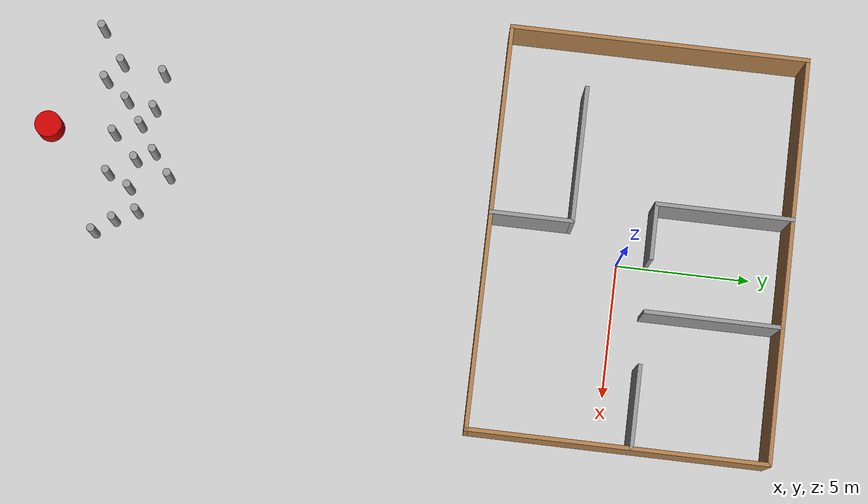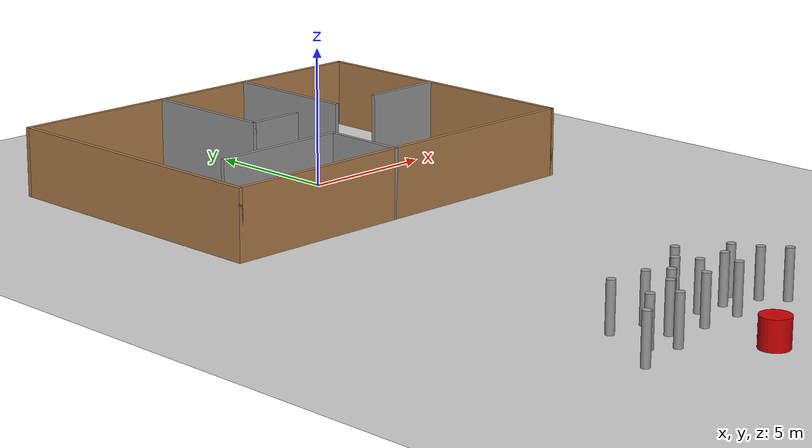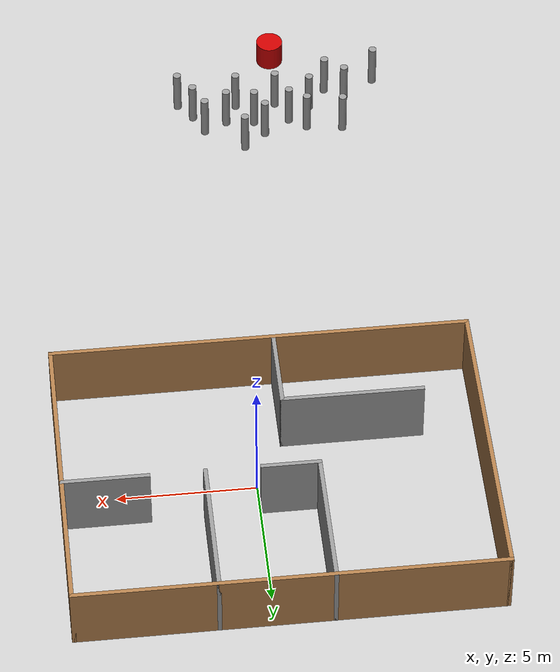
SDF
<sdf version="1.6">
 <world name="default">
  <light name="sun" type="directional">
   <pose>0 0 10 0 -0 0</pose>
   <diffuse>0.8 0.8 0.8 1</diffuse>
   <specular>0.2 0.2 0.2 1</specular>
   <attenuation>
    <range>1000</range>
    <constant>0.9</constant>
    <linear>0.01</linear>
    <quadratic>0.001</quadratic>
   </attenuation>
   <direction>-0.5 0.1 -0.9</direction>
  </light>
  <model name="ground_plane">
   <static>1</static>
   <link name="link">
    <collision name="collision">
     <geometry><plane><normal>0 0 1</normal><size>100 100</size></plane></geometry>
     <surface><friction><ode><mu>100</mu><mu2>50</mu2></ode></friction></surface>
    </collision>
    <visual name="visual">
     <cast_shadows>0</cast_shadows>
     <geometry><plane><normal>0 0 1</normal><size>100 100</size></plane></geometry>
     <material>
      <script><uri>file://media/materials/scripts/gazebo.material</uri><name>Gazebo/Grey</name></script>
     </material>
    </visual>
   </link>
  </model>
  <gravity>0 0 -9.8</gravity>
  <magnetic_field>6e-06 2.3e-05 -4.2e-05</magnetic_field>
  <atmosphere type="adiabatic"/>
  <physics name="default_physics" default="0" type="ode">
   <max_step_size>0.001</max_step_size>
   <real_time_factor>1</real_time_factor>
   <real_time_update_rate>1000</real_time_update_rate>
  </physics>
  <scene><ambient>0.4 0.4 0.4 1</ambient><background>0.7 0.7 0.7 1</background><shadows>1</shadows></scene>
  <spherical_coordinates>
   <surface_model>EARTH_WGS84</surface_model>
   <latitude_deg>0</latitude_deg>
   <longitude_deg>0</longitude_deg>
   <elevation>0</elevation>
   <heading_deg>0</heading_deg>
  </spherical_coordinates>
  <model name="test">
   <pose>-0.59103 0.583322 0 0 -0 0</pose>
   <link name="Wall_10">
    <collision name="Wall_10_Collision">
     <geometry><box><size>11.15 0.15 2.5</size></box></geometry>
     <pose>0 0 1.25 0 -0 0</pose>
    </collision>
    <visual name="Wall_10_Visual">
     <pose>0 0 1.25 0 -0 0</pose>
     <geometry><box><size>11.15 0.15 2.5</size></box></geometry>
     <material>
      <script><uri>file://media/materials/scripts/gazebo.material</uri><name>Gazebo/Wood</name></script>
      <ambient>0.760784 0.662745 0.627451 1</ambient>
     </material>
     <meta><layer>0</layer></meta>
    </visual>
    <pose>7.5 0 0 0 -0 -1.5708</pose>
   </link>
   <link name="Wall_12">
    <collision name="Wall_12_Collision">
     <geometry><box><size>5.15 0.15 2.5</size></box></geometry>
     <pose>0 0 1.25 0 -0 0</pose>
    </collision>
    <visual name="Wall_12_Visual">
     <pose>0 0 1.25 0 -0 0</pose>
     <geometry><box><size>5.15 0.15 2.5</size></box></geometry>
     <material>
      <script><uri>file://media/materials/scripts/gazebo.material</uri><name>Gazebo/Grey</name></script>
      <ambient>1 1 1 1</ambient>
     </material>
     <meta><layer>0</layer></meta>
    </visual>
    <pose>-3 -2.5 0 0 -0 0</pose>
   </link>
   <link name="Wall_14">
    <collision name="Wall_14_Collision">
     <geometry><box><size>3.15 0.15 2.5</size></box></geometry>
     <pose>0 0 1.25 0 -0 0</pose>
    </collision>
    <visual name="Wall_14_Visual">
     <pose>0 0 1.25 0 -0 0</pose>
     <geometry><box><size>3.15 0.15 2.5</size></box></geometry>
     <material>
      <script><uri>file://media/materials/scripts/gazebo.material</uri><name>Gazebo/Grey</name></script>
      <ambient>1 1 1 1</ambient>
     </material>
     <meta><layer>0</layer></meta>
    </visual>
    <pose>-0.5 -4 0 0 -0 1.5708</pose>
   </link>
   <link name="Wall_16">
    <collision name="Wall_16_Collision">
     <geometry><box><size>2.15 0.15 2.5</size></box></geometry>
     <pose>0 0 1.25 0 -0 0</pose>
    </collision>
    <visual name="Wall_16_Visual">
     <pose>0 0 1.25 0 -0 0</pose>
     <geometry><box><size>2.15 0.15 2.5</size></box></geometry>
     <material>
      <script><uri>file://media/materials/scripts/gazebo.material</uri><name>Gazebo/Grey</name></script>
      <ambient>1 1 1 1</ambient>
     </material>
     <meta><layer>0</layer></meta>
    </visual>
    <pose>-0.5 0.5 0 0 -0 0</pose>
   </link>
   <link name="Wall_18">
    <collision name="Wall_18_Collision">
     <geometry><box><size>3.15 0.15 2.5</size></box></geometry>
     <pose>0 0 1.25 0 -0 0</pose>
    </collision>
    <visual name="Wall_18_Visual">
     <pose>0 0 1.25 0 -0 0</pose>
     <geometry><box><size>3.15 0.15 2.5</size></box></geometry>
     <material>
      <script><uri>file://media/materials/scripts/gazebo.material</uri><name>Gazebo/Grey</name></script>
      <ambient>1 1 1 1</ambient>
     </material>
     <meta><layer>0</layer></meta>
    </visual>
    <pose>6 0.5 0 0 -0 0</pose>
   </link>
   <link name="Wall_20">
    <collision name="Wall_20_Collision">
     <geometry><box><size>5.15 0.15 2.5</size></box></geometry>
     <pose>0 0 1.25 0 -0 0</pose>
    </collision>
    <visual name="Wall_20_Visual">
     <pose>0 0 1.25 0 -0 0</pose>
     <geometry><box><size>5.15 0.15 2.5</size></box></geometry>
     <material>
      <script><uri>file://media/materials/scripts/gazebo.material</uri><name>Gazebo/Grey</name></script>
      <ambient>1 1 1 1</ambient>
     </material>
     <meta><layer>0</layer></meta>
    </visual>
    <pose>-1.5 3 0 0 -0 -1.5708</pose>
   </link>
   <link name="Wall_22">
    <collision name="Wall_22_Collision">
     <geometry><box><size>5.15 0.15 2.5</size></box></geometry>
     <pose>0 0 1.25 0 -0 0</pose>
    </collision>
    <visual name="Wall_22_Visual">
     <pose>0 0 1.25 0 -0 0</pose>
     <geometry><box><size>5.15 0.15 2.5</size></box></geometry>
     <material>
      <script><uri>file://media/materials/scripts/gazebo.material</uri><name>Gazebo/Grey</name></script>
      <ambient>1 1 1 1</ambient>
     </material>
     <meta><layer>0</layer></meta>
    </visual>
    <pose>2.5 3 0 0 -0 -1.5708</pose>
   </link>
   <link name="Wall_4">
    <collision name="Wall_4_Collision">
     <geometry><box><size>15.15 0.15 2.5</size></box></geometry>
     <pose>0 0 1.25 0 -0 0</pose>
    </collision>
    <visual name="Wall_4_Visual">
     <pose>0 0 1.25 0 -0 0</pose>
     <geometry><box><size>15.15 0.15 2.5</size></box></geometry>
     <material>
      <script><uri>file://media/materials/scripts/gazebo.material</uri><name>Gazebo/Wood</name></script>
      <ambient>0.760784 0.662745 0.627451 1</ambient>
     </material>
     <meta><layer>0</layer></meta>
    </visual>
    <pose>0 -5.5 0 0 -0 0</pose>
   </link>
   <link name="Wall_6">
    <collision name="Wall_6_Collision">
     <geometry><box><size>15.15 0.15 2.5</size></box></geometry>
     <pose>0 0 1.25 0 -0 0</pose>
    </collision>
    <visual name="Wall_6_Visual">
     <pose>0 0 1.25 0 -0 0</pose>
     <geometry><box><size>15.15 0.15 2.5</size></box></geometry>
     <material>
      <script><uri>file://media/materials/scripts/gazebo.material</uri><name>Gazebo/Wood</name></script>
      <ambient>0.760784 0.662745 0.627451 1</ambient>
     </material>
     <meta><layer>0</layer></meta>
    </visual>
    <pose>0 5.5 0 0 -0 0</pose>
   </link>
   <link name="Wall_8">
    <collision name="Wall_8_Collision">
     <geometry><box><size>11.15 0.15 2.5</size></box></geometry>
     <pose>0 0 1.25 0 -0 0</pose>
    </collision>
    <visual name="Wall_8_Visual">
     <pose>0 0 1.25 0 -0 0</pose>
     <geometry><box><size>11.15 0.15 2.5</size></box></geometry>
     <material>
      <script><uri>file://media/materials/scripts/gazebo.material</uri><name>Gazebo/Wood</name></script>
      <ambient>0.760784 0.662745 0.627451 1</ambient>
     </material>
     <meta><layer>0</layer></meta>
    </visual>
    <pose>-7.5 0 0 0 -0 -1.5708</pose>
   </link>
   <static>1</static>
  </model>
  <model name="focus_point">
   <link name="link">
    <inertial>
     <mass>1</mass>
     <inertia><ixx>0.145833</ixx><ixy>0</ixy><ixz>0</ixz><iyy>0.145833</iyy><iyz>0</iyz><izz>0.125</izz></inertia>
    </inertial>
    <visual name="visual">
     <geometry><cylinder><radius>0.5</radius><length>1</length></cylinder></geometry>
     <material>
      <script><name>Gazebo/Grey</name><uri>file://media/materials/scripts/gazebo.material</uri></script>
      <shader type="pixel"><normal_map>__default__</normal_map></shader>
      <ambient>0.8 0 0 0</ambient>
      <diffuse>0.7 0.7 0.7 1</diffuse>
      <specular>0.01 0.01 0.01 1</specular>
      <emissive>0 0 0 1</emissive>
     </material>
    </visual>
    <collision name="collision">
     <geometry><cylinder><radius>0.5</radius><length>1</length></cylinder></geometry>
     <surface>
      <friction>
       <ode><mu>1</mu><mu2>1</mu2><fdir1>0 0 0</fdir1><slip1>0</slip1><slip2>0</slip2></ode>
       <torsional>
        <coefficient>1</coefficient>
        <patch_radius>0</patch_radius>
        <surface_radius>0</surface_radius>
        <use_patch_radius>1</use_patch_radius>
        <ode><slip>0</slip></ode>
       </torsional>
      </friction>
      <bounce><restitution_coefficient>0</restitution_coefficient><threshold>1e+06</threshold></bounce>
      <contact>
       <collide_without_contact>0</collide_without_contact>
       <collide_without_contact_bitmask>1</collide_without_contact_bitmask>
       <collide_bitmask>1</collide_bitmask>
       <ode>
        <soft_cfm>0</soft_cfm>
        <soft_erp>0.2</soft_erp>
        <kp>1e+13</kp>
        <kd>1</kd>
        <max_vel>0.01</max_vel>
        <min_depth>0</min_depth>
       </ode>
       <bullet>
        <split_impulse>1</split_impulse>
        <split_impulse_penetration_threshold>-0.01</split_impulse_penetration_threshold>
        <soft_cfm>0</soft_cfm>
        <soft_erp>0.2</soft_erp>
        <kp>1e+13</kp>
        <kd>1</kd>
       </bullet>
      </contact>
     </surface>
    </collision>
   </link>
   <static>0</static>
   <pose>-2.7076 -21.7567 0.5 0 -0 0</pose>
  </model>
  <model name="person_cylinder">
   <link name="link">
    <inertial>
     <mass>1</mass>
     <inertia><ixx>0.145833</ixx><ixy>0</ixy><ixz>0</ixz><iyy>0.145833</iyy><iyz>0</iyz><izz>0.125</izz></inertia>
    </inertial>
    <pose>0 0 0.86 0 -0 0</pose>
    <visual name="visual">
     <geometry><cylinder><radius>0.15</radius><length>1.7</length></cylinder></geometry>
     <material>
      <script><name>Gazebo/Grey</name><uri>file://media/materials/scripts/gazebo.material</uri></script>
      <shader type="pixel"><normal_map>__default__</normal_map></shader>
      <ambient>0.3 0.3 0.3 1</ambient>
      <diffuse>0.7 0.7 0.7 1</diffuse>
      <specular>0.01 0.01 0.01 1</specular>
      <emissive>0 0 0 1</emissive>
     </material>
    </visual>
    <collision name="collision">
     <geometry><cylinder><radius>0.15</radius><length>1.7</length></cylinder></geometry>
     <surface>
      <friction>
       <ode><mu>1</mu><mu2>1</mu2><fdir1>0 0 0</fdir1><slip1>0</slip1><slip2>0</slip2></ode>
       <torsional>
        <coefficient>1</coefficient>
        <patch_radius>0</patch_radius>
        <surface_radius>0</surface_radius>
        <use_patch_radius>1</use_patch_radius>
        <ode><slip>0</slip></ode>
       </torsional>
      </friction>
      <bounce><restitution_coefficient>0</restitution_coefficient><threshold>1e+06</threshold></bounce>
      <contact>
       <collide_without_contact>0</collide_without_contact>
       <collide_without_contact_bitmask>1</collide_without_contact_bitmask>
       <collide_bitmask>1</collide_bitmask>
       <ode>
        <soft_cfm>0</soft_cfm>
        <soft_erp>0.2</soft_erp>
        <kp>1e+13</kp>
        <kd>1</kd>
        <max_vel>0.01</max_vel>
        <min_depth>0</min_depth>
       </ode>
       <bullet>
        <split_impulse>1</split_impulse>
        <split_impulse_penetration_threshold>-0.01</split_impulse_penetration_threshold>
        <soft_cfm>0</soft_cfm>
        <soft_erp>0.2</soft_erp>
        <kp>1e+13</kp>
        <kd>1</kd>
       </bullet>
      </contact>
     </surface>
    </collision>
   </link>
   <static>0</static>
   <pose>-3.96311 -18.9393 -0.010004 0 0 -5e-06</pose>
  </model>
  <model name="person_cylinder_0">
   <link name="link">
    <inertial>
     <mass>1</mass>
     <inertia><ixx>0.145833</ixx><ixy>0</ixy><ixz>0</ixz><iyy>0.145833</iyy><iyz>0</iyz><izz>0.125</izz></inertia>
    </inertial>
    <pose>0 0 0.86 0 -0 0</pose>
    <visual name="visual">
     <geometry><cylinder><radius>0.15</radius><length>1.7</length></cylinder></geometry>
     <material>
      <script><name>Gazebo/Grey</name><uri>file://media/materials/scripts/gazebo.material</uri></script>
      <shader type="pixel"><normal_map>__default__</normal_map></shader>
      <ambient>0.3 0.3 0.3 1</ambient>
      <diffuse>0.7 0.7 0.7 1</diffuse>
      <specular>0.01 0.01 0.01 1</specular>
      <emissive>0 0 0 1</emissive>
     </material>
    </visual>
    <collision name="collision">
     <geometry><cylinder><radius>0.15</radius><length>1.7</length></cylinder></geometry>
     <surface>
      <friction>
       <ode><mu>1</mu><mu2>1</mu2><fdir1>0 0 0</fdir1><slip1>0</slip1><slip2>0</slip2></ode>
       <torsional>
        <coefficient>1</coefficient>
        <patch_radius>0</patch_radius>
        <surface_radius>0</surface_radius>
        <use_patch_radius>1</use_patch_radius>
        <ode><slip>0</slip></ode>
       </torsional>
      </friction>
      <bounce><restitution_coefficient>0</restitution_coefficient><threshold>1e+06</threshold></bounce>
      <contact>
       <collide_without_contact>0</collide_without_contact>
       <collide_without_contact_bitmask>1</collide_without_contact_bitmask>
       <collide_bitmask>1</collide_bitmask>
       <ode>
        <soft_cfm>0</soft_cfm>
        <soft_erp>0.2</soft_erp>
        <kp>1e+13</kp>
        <kd>1</kd>
        <max_vel>0.01</max_vel>
        <min_depth>0</min_depth>
       </ode>
       <bullet>
        <split_impulse>1</split_impulse>
        <split_impulse_penetration_threshold>-0.01</split_impulse_penetration_threshold>
        <soft_cfm>0</soft_cfm>
        <soft_erp>0.2</soft_erp>
        <kp>1e+13</kp>
        <kd>1</kd>
       </bullet>
      </contact>
     </surface>
    </collision>
   </link>
   <static>0</static>
   <pose>-2.66432 -19.2473 -0.010004 0 0 -5e-06</pose>
  </model>
  <model name="person_cylinder_1">
   <link name="link">
    <inertial>
     <mass>1</mass>
     <inertia><ixx>0.145833</ixx><ixy>0</ixy><ixz>0</ixz><iyy>0.145833</iyy><iyz>0</iyz><izz>0.125</izz></inertia>
    </inertial>
    <pose>0 0 0.86 0 -0 0</pose>
    <visual name="visual">
     <geometry><cylinder><radius>0.15</radius><length>1.7</length></cylinder></geometry>
     <material>
      <script><name>Gazebo/Grey</name><uri>file://media/materials/scripts/gazebo.material</uri></script>
      <shader type="pixel"><normal_map>__default__</normal_map></shader>
      <ambient>0.3 0.3 0.3 1</ambient>
      <diffuse>0.7 0.7 0.7 1</diffuse>
      <specular>0.01 0.01 0.01 1</specular>
      <emissive>0 0 0 1</emissive>
     </material>
    </visual>
    <collision name="collision">
     <geometry><cylinder><radius>0.15</radius><length>1.7</length></cylinder></geometry>
     <surface>
      <friction>
       <ode><mu>1</mu><mu2>1</mu2><fdir1>0 0 0</fdir1><slip1>0</slip1><slip2>0</slip2></ode>
       <torsional>
        <coefficient>1</coefficient>
        <patch_radius>0</patch_radius>
        <surface_radius>0</surface_radius>
        <use_patch_radius>1</use_patch_radius>
        <ode><slip>0</slip></ode>
       </torsional>
      </friction>
      <bounce><restitution_coefficient>0</restitution_coefficient><threshold>1e+06</threshold></bounce>
      <contact>
       <collide_without_contact>0</collide_without_contact>
       <collide_without_contact_bitmask>1</collide_without_contact_bitmask>
       <collide_bitmask>1</collide_bitmask>
       <ode>
        <soft_cfm>0</soft_cfm>
        <soft_erp>0.2</soft_erp>
        <kp>1e+13</kp>
        <kd>1</kd>
        <max_vel>0.01</max_vel>
        <min_depth>0</min_depth>
       </ode>
       <bullet>
        <split_impulse>1</split_impulse>
        <split_impulse_penetration_threshold>-0.01</split_impulse_penetration_threshold>
        <soft_cfm>0</soft_cfm>
        <soft_erp>0.2</soft_erp>
        <kp>1e+13</kp>
        <kd>1</kd>
       </bullet>
      </contact>
     </surface>
    </collision>
   </link>
   <static>0</static>
   <pose>-1.13431 -19.2848 -0.010005 0 0 -8e-06</pose>
  </model>
  <model name="person_cylinder_2">
   <link name="link">
    <inertial>
     <mass>1</mass>
     <inertia><ixx>0.145833</ixx><ixy>0</ixy><ixz>0</ixz><iyy>0.145833</iyy><iyz>0</iyz><izz>0.125</izz></inertia>
    </inertial>
    <pose>0 0 0.86 0 -0 0</pose>
    <visual name="visual">
     <geometry><cylinder><radius>0.15</radius><length>1.7</length></cylinder></geometry>
     <material>
      <script><name>Gazebo/Grey</name><uri>file://media/materials/scripts/gazebo.material</uri></script>
      <shader type="pixel"><normal_map>__default__</normal_map></shader>
      <ambient>0.3 0.3 0.3 1</ambient>
      <diffuse>0.7 0.7 0.7 1</diffuse>
      <specular>0.01 0.01 0.01 1</specular>
      <emissive>0 0 0 1</emissive>
     </material>
    </visual>
    <collision name="collision">
     <geometry><cylinder><radius>0.15</radius><length>1.7</length></cylinder></geometry>
     <surface>
      <friction>
       <ode><mu>1</mu><mu2>1</mu2><fdir1>0 0 0</fdir1><slip1>0</slip1><slip2>0</slip2></ode>
       <torsional>
        <coefficient>1</coefficient>
        <patch_radius>0</patch_radius>
        <surface_radius>0</surface_radius>
        <use_patch_radius>1</use_patch_radius>
        <ode><slip>0</slip></ode>
       </torsional>
      </friction>
      <bounce><restitution_coefficient>0</restitution_coefficient><threshold>1e+06</threshold></bounce>
      <contact>
       <collide_without_contact>0</collide_without_contact>
       <collide_without_contact_bitmask>1</collide_without_contact_bitmask>
       <collide_bitmask>1</collide_bitmask>
       <ode>
        <soft_cfm>0</soft_cfm>
        <soft_erp>0.2</soft_erp>
        <kp>1e+13</kp>
        <kd>1</kd>
        <max_vel>0.01</max_vel>
        <min_depth>0</min_depth>
       </ode>
       <bullet>
        <split_impulse>1</split_impulse>
        <split_impulse_penetration_threshold>-0.01</split_impulse_penetration_threshold>
        <soft_cfm>0</soft_cfm>
        <soft_erp>0.2</soft_erp>
        <kp>1e+13</kp>
        <kd>1</kd>
       </bullet>
      </contact>
     </surface>
    </collision>
   </link>
   <static>0</static>
   <pose>0.572086 -18.8191 -0.010004 0 0 -6e-06</pose>
  </model>
  <model name="person_cylinder_3">
   <link name="link">
    <inertial>
     <mass>1</mass>
     <inertia><ixx>0.145833</ixx><ixy>0</ixy><ixz>0</ixz><iyy>0.145833</iyy><iyz>0</iyz><izz>0.125</izz></inertia>
    </inertial>
    <pose>0 0 0.86 0 -0 0</pose>
    <visual name="visual">
     <geometry><cylinder><radius>0.15</radius><length>1.7</length></cylinder></geometry>
     <material>
      <script><name>Gazebo/Grey</name><uri>file://media/materials/scripts/gazebo.material</uri></script>
      <shader type="pixel"><normal_map>__default__</normal_map></shader>
      <ambient>0.3 0.3 0.3 1</ambient>
      <diffuse>0.7 0.7 0.7 1</diffuse>
      <specular>0.01 0.01 0.01 1</specular>
      <emissive>0 0 0 1</emissive>
     </material>
    </visual>
    <collision name="collision">
     <geometry><cylinder><radius>0.15</radius><length>1.7</length></cylinder></geometry>
     <surface>
      <friction>
       <ode><mu>1</mu><mu2>1</mu2><fdir1>0 0 0</fdir1><slip1>0</slip1><slip2>0</slip2></ode>
       <torsional>
        <coefficient>1</coefficient>
        <patch_radius>0</patch_radius>
        <surface_radius>0</surface_radius>
        <use_patch_radius>1</use_patch_radius>
        <ode><slip>0</slip></ode>
       </torsional>
      </friction>
      <bounce><restitution_coefficient>0</restitution_coefficient><threshold>1e+06</threshold></bounce>
      <contact>
       <collide_without_contact>0</collide_without_contact>
       <collide_without_contact_bitmask>1</collide_without_contact_bitmask>
       <collide_bitmask>1</collide_bitmask>
       <ode>
        <soft_cfm>0</soft_cfm>
        <soft_erp>0.2</soft_erp>
        <kp>1e+13</kp>
        <kd>1</kd>
        <max_vel>0.01</max_vel>
        <min_depth>0</min_depth>
       </ode>
       <bullet>
        <split_impulse>1</split_impulse>
        <split_impulse_penetration_threshold>-0.01</split_impulse_penetration_threshold>
        <soft_cfm>0</soft_cfm>
        <soft_erp>0.2</soft_erp>
        <kp>1e+13</kp>
        <kd>1</kd>
       </bullet>
      </contact>
     </surface>
    </collision>
   </link>
   <static>0</static>
   <pose>1.10652 -19.5145 -0.010005 0 -0 -9e-06</pose>
  </model>
  <model name="person_cylinder_4">
   <link name="link">
    <inertial>
     <mass>1</mass>
     <inertia><ixx>0.145833</ixx><ixy>0</ixy><ixz>0</ixz><iyy>0.145833</iyy><iyz>0</iyz><izz>0.125</izz></inertia>
    </inertial>
    <pose>0 0 0.86 0 -0 0</pose>
    <visual name="visual">
     <geometry><cylinder><radius>0.15</radius><length>1.7</length></cylinder></geometry>
     <material>
      <script><name>Gazebo/Grey</name><uri>file://media/materials/scripts/gazebo.material</uri></script>
      <shader type="pixel"><normal_map>__default__</normal_map></shader>
      <ambient>0.3 0.3 0.3 1</ambient>
      <diffuse>0.7 0.7 0.7 1</diffuse>
      <specular>0.01 0.01 0.01 1</specular>
      <emissive>0 0 0 1</emissive>
     </material>
    </visual>
    <collision name="collision">
     <geometry><cylinder><radius>0.15</radius><length>1.7</length></cylinder></geometry>
     <surface>
      <friction>
       <ode><mu>1</mu><mu2>1</mu2><fdir1>0 0 0</fdir1><slip1>0</slip1><slip2>0</slip2></ode>
       <torsional>
        <coefficient>1</coefficient>
        <patch_radius>0</patch_radius>
        <surface_radius>0</surface_radius>
        <use_patch_radius>1</use_patch_radius>
        <ode><slip>0</slip></ode>
       </torsional>
      </friction>
      <bounce><restitution_coefficient>0</restitution_coefficient><threshold>1e+06</threshold></bounce>
      <contact>
       <collide_without_contact>0</collide_without_contact>
       <collide_without_contact_bitmask>1</collide_without_contact_bitmask>
       <collide_bitmask>1</collide_bitmask>
       <ode>
        <soft_cfm>0</soft_cfm>
        <soft_erp>0.2</soft_erp>
        <kp>1e+13</kp>
        <kd>1</kd>
        <max_vel>0.01</max_vel>
        <min_depth>0</min_depth>
       </ode>
       <bullet>
        <split_impulse>1</split_impulse>
        <split_impulse_penetration_threshold>-0.01</split_impulse_penetration_threshold>
        <soft_cfm>0</soft_cfm>
        <soft_erp>0.2</soft_erp>
        <kp>1e+13</kp>
        <kd>1</kd>
       </bullet>
      </contact>
     </surface>
    </collision>
   </link>
   <static>0</static>
   <pose>-0.685376 -18.4193 -0.010004 0 0 -8e-06</pose>
  </model>
  <model name="person_cylinder_5">
   <link name="link">
    <inertial>
     <mass>1</mass>
     <inertia><ixx>0.145833</ixx><ixy>0</ixy><ixz>0</ixz><iyy>0.145833</iyy><iyz>0</iyz><izz>0.125</izz></inertia>
    </inertial>
    <pose>0 0 0.86 0 -0 0</pose>
    <visual name="visual">
     <geometry><cylinder><radius>0.15</radius><length>1.7</length></cylinder></geometry>
     <material>
      <script><name>Gazebo/Grey</name><uri>file://media/materials/scripts/gazebo.material</uri></script>
      <shader type="pixel"><normal_map>__default__</normal_map></shader>
      <ambient>0.3 0.3 0.3 1</ambient>
      <diffuse>0.7 0.7 0.7 1</diffuse>
      <specular>0.01 0.01 0.01 1</specular>
      <emissive>0 0 0 1</emissive>
     </material>
    </visual>
    <collision name="collision">
     <geometry><cylinder><radius>0.15</radius><length>1.7</length></cylinder></geometry>
     <surface>
      <friction>
       <ode><mu>1</mu><mu2>1</mu2><fdir1>0 0 0</fdir1><slip1>0</slip1><slip2>0</slip2></ode>
       <torsional>
        <coefficient>1</coefficient>
        <patch_radius>0</patch_radius>
        <surface_radius>0</surface_radius>
        <use_patch_radius>1</use_patch_radius>
        <ode><slip>0</slip></ode>
       </torsional>
      </friction>
      <bounce><restitution_coefficient>0</restitution_coefficient><threshold>1e+06</threshold></bounce>
      <contact>
       <collide_without_contact>0</collide_without_contact>
       <collide_without_contact_bitmask>1</collide_without_contact_bitmask>
       <collide_bitmask>1</collide_bitmask>
       <ode>
        <soft_cfm>0</soft_cfm>
        <soft_erp>0.2</soft_erp>
        <kp>1e+13</kp>
        <kd>1</kd>
        <max_vel>0.01</max_vel>
        <min_depth>0</min_depth>
       </ode>
       <bullet>
        <split_impulse>1</split_impulse>
        <split_impulse_penetration_threshold>-0.01</split_impulse_penetration_threshold>
        <soft_cfm>0</soft_cfm>
        <soft_erp>0.2</soft_erp>
        <kp>1e+13</kp>
        <kd>1</kd>
       </bullet>
      </contact>
     </surface>
    </collision>
   </link>
   <static>0</static>
   <pose>-2.12036 -17.6685 -0.010005 -0 -0 -5e-06</pose>
  </model>
  <model name="person_cylinder_6">
   <link name="link">
    <inertial>
     <mass>1</mass>
     <inertia><ixx>0.145833</ixx><ixy>0</ixy><ixz>0</ixz><iyy>0.145833</iyy><iyz>0</iyz><izz>0.125</izz></inertia>
    </inertial>
    <pose>0 0 0.86 0 -0 0</pose>
    <visual name="visual">
     <geometry><cylinder><radius>0.15</radius><length>1.7</length></cylinder></geometry>
     <material>
      <script><name>Gazebo/Grey</name><uri>file://media/materials/scripts/gazebo.material</uri></script>
      <shader type="pixel"><normal_map>__default__</normal_map></shader>
      <ambient>0.3 0.3 0.3 1</ambient>
      <diffuse>0.7 0.7 0.7 1</diffuse>
      <specular>0.01 0.01 0.01 1</specular>
      <emissive>0 0 0 1</emissive>
     </material>
    </visual>
    <collision name="collision">
     <geometry><cylinder><radius>0.15</radius><length>1.7</length></cylinder></geometry>
     <surface>
      <friction>
       <ode><mu>1</mu><mu2>1</mu2><fdir1>0 0 0</fdir1><slip1>0</slip1><slip2>0</slip2></ode>
       <torsional>
        <coefficient>1</coefficient>
        <patch_radius>0</patch_radius>
        <surface_radius>0</surface_radius>
        <use_patch_radius>1</use_patch_radius>
        <ode><slip>0</slip></ode>
       </torsional>
      </friction>
      <bounce><restitution_coefficient>0</restitution_coefficient><threshold>1e+06</threshold></bounce>
      <contact>
       <collide_without_contact>0</collide_without_contact>
       <collide_without_contact_bitmask>1</collide_without_contact_bitmask>
       <collide_bitmask>1</collide_bitmask>
       <ode>
        <soft_cfm>0</soft_cfm>
        <soft_erp>0.2</soft_erp>
        <kp>1e+13</kp>
        <kd>1</kd>
        <max_vel>0.01</max_vel>
        <min_depth>0</min_depth>
       </ode>
       <bullet>
        <split_impulse>1</split_impulse>
        <split_impulse_penetration_threshold>-0.01</split_impulse_penetration_threshold>
        <soft_cfm>0</soft_cfm>
        <soft_erp>0.2</soft_erp>
        <kp>1e+13</kp>
        <kd>1</kd>
       </bullet>
      </contact>
     </surface>
    </collision>
   </link>
   <static>0</static>
   <pose>-3.76584 -17.868 -0.010004 0 0 -5e-06</pose>
  </model>
  <model name="person_cylinder_7">
   <link name="link">
    <inertial>
     <mass>1</mass>
     <inertia><ixx>0.145833</ixx><ixy>0</ixy><ixz>0</ixz><iyy>0.145833</iyy><iyz>0</iyz><izz>0.125</izz></inertia>
    </inertial>
    <pose>0 0 0.86 0 -0 0</pose>
    <visual name="visual">
     <geometry><cylinder><radius>0.15</radius><length>1.7</length></cylinder></geometry>
     <material>
      <script><name>Gazebo/Grey</name><uri>file://media/materials/scripts/gazebo.material</uri></script>
      <shader type="pixel"><normal_map>__default__</normal_map></shader>
      <ambient>0.3 0.3 0.3 1</ambient>
      <diffuse>0.7 0.7 0.7 1</diffuse>
      <specular>0.01 0.01 0.01 1</specular>
      <emissive>0 0 0 1</emissive>
     </material>
    </visual>
    <collision name="collision">
     <geometry><cylinder><radius>0.15</radius><length>1.7</length></cylinder></geometry>
     <surface>
      <friction>
       <ode><mu>1</mu><mu2>1</mu2><fdir1>0 0 0</fdir1><slip1>0</slip1><slip2>0</slip2></ode>
       <torsional>
        <coefficient>1</coefficient>
        <patch_radius>0</patch_radius>
        <surface_radius>0</surface_radius>
        <use_patch_radius>1</use_patch_radius>
        <ode><slip>0</slip></ode>
       </torsional>
      </friction>
      <bounce><restitution_coefficient>0</restitution_coefficient><threshold>1e+06</threshold></bounce>
      <contact>
       <collide_without_contact>0</collide_without_contact>
       <collide_without_contact_bitmask>1</collide_without_contact_bitmask>
       <collide_bitmask>1</collide_bitmask>
       <ode>
        <soft_cfm>0</soft_cfm>
        <soft_erp>0.2</soft_erp>
        <kp>1e+13</kp>
        <kd>1</kd>
        <max_vel>0.01</max_vel>
        <min_depth>0</min_depth>
       </ode>
       <bullet>
        <split_impulse>1</split_impulse>
        <split_impulse_penetration_threshold>-0.01</split_impulse_penetration_threshold>
        <soft_cfm>0</soft_cfm>
        <soft_erp>0.2</soft_erp>
        <kp>1e+13</kp>
        <kd>1</kd>
       </bullet>
      </contact>
     </surface>
    </collision>
   </link>
   <static>0</static>
   <pose>-4.65378 -19.8264 -0.010005 0 -0 -9e-06</pose>
  </model>
  <model name="person_cylinder_8">
   <link name="link">
    <inertial>
     <mass>1</mass>
     <inertia><ixx>0.145833</ixx><ixy>0</ixy><ixz>0</ixz><iyy>0.145833</iyy><iyz>0</iyz><izz>0.125</izz></inertia>
    </inertial>
    <pose>0 0 0.86 0 -0 0</pose>
    <visual name="visual">
     <geometry><cylinder><radius>0.15</radius><length>1.7</length></cylinder></geometry>
     <material>
      <script><name>Gazebo/Grey</name><uri>file://media/materials/scripts/gazebo.material</uri></script>
      <shader type="pixel"><normal_map>__default__</normal_map></shader>
      <ambient>0.3 0.3 0.3 1</ambient>
      <diffuse>0.7 0.7 0.7 1</diffuse>
      <specular>0.01 0.01 0.01 1</specular>
      <emissive>0 0 0 1</emissive>
     </material>
    </visual>
    <collision name="collision">
     <geometry><cylinder><radius>0.15</radius><length>1.7</length></cylinder></geometry>
     <surface>
      <friction>
       <ode><mu>1</mu><mu2>1</mu2><fdir1>0 0 0</fdir1><slip1>0</slip1><slip2>0</slip2></ode>
       <torsional>
        <coefficient>1</coefficient>
        <patch_radius>0</patch_radius>
        <surface_radius>0</surface_radius>
        <use_patch_radius>1</use_patch_radius>
        <ode><slip>0</slip></ode>
       </torsional>
      </friction>
      <bounce><restitution_coefficient>0</restitution_coefficient><threshold>1e+06</threshold></bounce>
      <contact>
       <collide_without_contact>0</collide_without_contact>
       <collide_without_contact_bitmask>1</collide_without_contact_bitmask>
       <collide_bitmask>1</collide_bitmask>
       <ode>
        <soft_cfm>0</soft_cfm>
        <soft_erp>0.2</soft_erp>
        <kp>1e+13</kp>
        <kd>1</kd>
        <max_vel>0.01</max_vel>
        <min_depth>0</min_depth>
       </ode>
       <bullet>
        <split_impulse>1</split_impulse>
        <split_impulse_penetration_threshold>-0.01</split_impulse_penetration_threshold>
        <soft_cfm>0</soft_cfm>
        <soft_erp>0.2</soft_erp>
        <kp>1e+13</kp>
        <kd>1</kd>
       </bullet>
      </contact>
     </surface>
    </collision>
   </link>
   <static>0</static>
   <pose>-5.36258 -19.3058 -0.010004 0 0 -9e-06</pose>
  </model>
  <model name="person_cylinder_9">
   <link name="link">
    <inertial>
     <mass>1</mass>
     <inertia><ixx>0.145833</ixx><ixy>0</ixy><ixz>0</ixz><iyy>0.145833</iyy><iyz>0</iyz><izz>0.125</izz></inertia>
    </inertial>
    <pose>0 0 0.86 0 -0 0</pose>
    <visual name="visual">
     <geometry><cylinder><radius>0.15</radius><length>1.7</length></cylinder></geometry>
     <material>
      <script><name>Gazebo/Grey</name><uri>file://media/materials/scripts/gazebo.material</uri></script>
      <shader type="pixel"><normal_map>__default__</normal_map></shader>
      <ambient>0.3 0.3 0.3 1</ambient>
      <diffuse>0.7 0.7 0.7 1</diffuse>
      <specular>0.01 0.01 0.01 1</specular>
      <emissive>0 0 0 1</emissive>
     </material>
    </visual>
    <collision name="collision">
     <geometry><cylinder><radius>0.15</radius><length>1.7</length></cylinder></geometry>
     <surface>
      <friction>
       <ode><mu>1</mu><mu2>1</mu2><fdir1>0 0 0</fdir1><slip1>0</slip1><slip2>0</slip2></ode>
       <torsional>
        <coefficient>1</coefficient>
        <patch_radius>0</patch_radius>
        <surface_radius>0</surface_radius>
        <use_patch_radius>1</use_patch_radius>
        <ode><slip>0</slip></ode>
       </torsional>
      </friction>
      <bounce><restitution_coefficient>0</restitution_coefficient><threshold>1e+06</threshold></bounce>
      <contact>
       <collide_without_contact>0</collide_without_contact>
       <collide_without_contact_bitmask>1</collide_without_contact_bitmask>
       <collide_bitmask>1</collide_bitmask>
       <ode>
        <soft_cfm>0</soft_cfm>
        <soft_erp>0.2</soft_erp>
        <kp>1e+13</kp>
        <kd>1</kd>
        <max_vel>0.01</max_vel>
        <min_depth>0</min_depth>
       </ode>
       <bullet>
        <split_impulse>1</split_impulse>
        <split_impulse_penetration_threshold>-0.01</split_impulse_penetration_threshold>
        <soft_cfm>0</soft_cfm>
        <soft_erp>0.2</soft_erp>
        <kp>1e+13</kp>
        <kd>1</kd>
       </bullet>
      </contact>
     </surface>
    </collision>
   </link>
   <static>0</static>
   <pose>-3.11064 -18.3117 -0.010005 -0 -0 -5e-06</pose>
  </model>
  <model name="person_cylinder_10">
   <link name="link">
    <inertial>
     <mass>1</mass>
     <inertia><ixx>0.145833</ixx><ixy>0</ixy><ixz>0</ixz><iyy>0.145833</iyy><iyz>0</iyz><izz>0.125</izz></inertia>
    </inertial>
    <pose>0 0 0.86 0 -0 0</pose>
    <visual name="visual">
     <geometry><cylinder><radius>0.15</radius><length>1.7</length></cylinder></geometry>
     <material>
      <script><name>Gazebo/Grey</name><uri>file://media/materials/scripts/gazebo.material</uri></script>
      <shader type="pixel"><normal_map>__default__</normal_map></shader>
      <ambient>0.3 0.3 0.3 1</ambient>
      <diffuse>0.7 0.7 0.7 1</diffuse>
      <specular>0.01 0.01 0.01 1</specular>
      <emissive>0 0 0 1</emissive>
     </material>
    </visual>
    <collision name="collision">
     <geometry><cylinder><radius>0.15</radius><length>1.7</length></cylinder></geometry>
     <surface>
      <friction>
       <ode><mu>1</mu><mu2>1</mu2><fdir1>0 0 0</fdir1><slip1>0</slip1><slip2>0</slip2></ode>
       <torsional>
        <coefficient>1</coefficient>
        <patch_radius>0</patch_radius>
        <surface_radius>0</surface_radius>
        <use_patch_radius>1</use_patch_radius>
        <ode><slip>0</slip></ode>
       </torsional>
      </friction>
      <bounce><restitution_coefficient>0</restitution_coefficient><threshold>1e+06</threshold></bounce>
      <contact>
       <collide_without_contact>0</collide_without_contact>
       <collide_without_contact_bitmask>1</collide_without_contact_bitmask>
       <collide_bitmask>1</collide_bitmask>
       <ode>
        <soft_cfm>0</soft_cfm>
        <soft_erp>0.2</soft_erp>
        <kp>1e+13</kp>
        <kd>1</kd>
        <max_vel>0.01</max_vel>
        <min_depth>0</min_depth>
       </ode>
       <bullet>
        <split_impulse>1</split_impulse>
        <split_impulse_penetration_threshold>-0.01</split_impulse_penetration_threshold>
        <soft_cfm>0</soft_cfm>
        <soft_erp>0.2</soft_erp>
        <kp>1e+13</kp>
        <kd>1</kd>
       </bullet>
      </contact>
     </surface>
    </collision>
   </link>
   <static>0</static>
   <pose>-1.75938 -18.3157 -0.010004 0 0 -6e-06</pose>
  </model>
  <model name="person_cylinder_11">
   <link name="link">
    <inertial>
     <mass>1</mass>
     <inertia><ixx>0.145833</ixx><ixy>0</ixy><ixz>0</ixz><iyy>0.145833</iyy><iyz>0</iyz><izz>0.125</izz></inertia>
    </inertial>
    <pose>0 0 0.86 0 -0 0</pose>
    <visual name="visual">
     <geometry><cylinder><radius>0.15</radius><length>1.7</length></cylinder></geometry>
     <material>
      <script><name>Gazebo/Grey</name><uri>file://media/materials/scripts/gazebo.material</uri></script>
      <shader type="pixel"><normal_map>__default__</normal_map></shader>
      <ambient>0.3 0.3 0.3 1</ambient>
      <diffuse>0.7 0.7 0.7 1</diffuse>
      <specular>0.01 0.01 0.01 1</specular>
      <emissive>0 0 0 1</emissive>
     </material>
    </visual>
    <collision name="collision">
     <geometry><cylinder><radius>0.15</radius><length>1.7</length></cylinder></geometry>
     <surface>
      <friction>
       <ode><mu>1</mu><mu2>1</mu2><fdir1>0 0 0</fdir1><slip1>0</slip1><slip2>0</slip2></ode>
       <torsional>
        <coefficient>1</coefficient>
        <patch_radius>0</patch_radius>
        <surface_radius>0</surface_radius>
        <use_patch_radius>1</use_patch_radius>
        <ode><slip>0</slip></ode>
       </torsional>
      </friction>
      <bounce><restitution_coefficient>0</restitution_coefficient><threshold>1e+06</threshold></bounce>
      <contact>
       <collide_without_contact>0</collide_without_contact>
       <collide_without_contact_bitmask>1</collide_without_contact_bitmask>
       <collide_bitmask>1</collide_bitmask>
       <ode>
        <soft_cfm>0</soft_cfm>
        <soft_erp>0.2</soft_erp>
        <kp>1e+13</kp>
        <kd>1</kd>
        <max_vel>0.01</max_vel>
        <min_depth>0</min_depth>
       </ode>
       <bullet>
        <split_impulse>1</split_impulse>
        <split_impulse_penetration_threshold>-0.01</split_impulse_penetration_threshold>
        <soft_cfm>0</soft_cfm>
        <soft_erp>0.2</soft_erp>
        <kp>1e+13</kp>
        <kd>1</kd>
       </bullet>
      </contact>
     </surface>
    </collision>
   </link>
   <static>0</static>
   <pose>0.175271 -18.0103 -0.010005 0 -0 -6e-06</pose>
  </model>
  <model name="person_cylinder_12">
   <link name="link">
    <inertial>
     <mass>1</mass>
     <inertia><ixx>0.145833</ixx><ixy>0</ixy><ixz>0</ixz><iyy>0.145833</iyy><iyz>0</iyz><izz>0.125</izz></inertia>
    </inertial>
    <pose>0 0 0.86 0 -0 0</pose>
    <visual name="visual">
     <geometry><cylinder><radius>0.15</radius><length>1.7</length></cylinder></geometry>
     <material>
      <script><name>Gazebo/Grey</name><uri>file://media/materials/scripts/gazebo.material</uri></script>
      <shader type="pixel"><normal_map>__default__</normal_map></shader>
      <ambient>0.3 0.3 0.3 1</ambient>
      <diffuse>0.7 0.7 0.7 1</diffuse>
      <specular>0.01 0.01 0.01 1</specular>
      <emissive>0 0 0 1</emissive>
     </material>
    </visual>
    <collision name="collision">
     <geometry><cylinder><radius>0.15</radius><length>1.7</length></cylinder></geometry>
     <surface>
      <friction>
       <ode><mu>1</mu><mu2>1</mu2><fdir1>0 0 0</fdir1><slip1>0</slip1><slip2>0</slip2></ode>
       <torsional>
        <coefficient>1</coefficient>
        <patch_radius>0</patch_radius>
        <surface_radius>0</surface_radius>
        <use_patch_radius>1</use_patch_radius>
        <ode><slip>0</slip></ode>
       </torsional>
      </friction>
      <bounce><restitution_coefficient>0</restitution_coefficient><threshold>1e+06</threshold></bounce>
      <contact>
       <collide_without_contact>0</collide_without_contact>
       <collide_without_contact_bitmask>1</collide_without_contact_bitmask>
       <collide_bitmask>1</collide_bitmask>
       <ode>
        <soft_cfm>0</soft_cfm>
        <soft_erp>0.2</soft_erp>
        <kp>1e+13</kp>
        <kd>1</kd>
        <max_vel>0.01</max_vel>
        <min_depth>0</min_depth>
       </ode>
       <bullet>
        <split_impulse>1</split_impulse>
        <split_impulse_penetration_threshold>-0.01</split_impulse_penetration_threshold>
        <soft_cfm>0</soft_cfm>
        <soft_erp>0.2</soft_erp>
        <kp>1e+13</kp>
        <kd>1</kd>
       </bullet>
      </contact>
     </surface>
    </collision>
   </link>
   <static>0</static>
   <pose>-1.28171 -17.0002 -0.010004 0 0 -5e-06</pose>
  </model>
  <model name="person_cylinder_13">
   <link name="link">
    <inertial>
     <mass>1</mass>
     <inertia><ixx>0.145833</ixx><ixy>0</ixy><ixz>0</ixz><iyy>0.145833</iyy><iyz>0</iyz><izz>0.125</izz></inertia>
    </inertial>
    <pose>0 0 0.86 0 -0 0</pose>
    <visual name="visual">
     <geometry><cylinder><radius>0.15</radius><length>1.7</length></cylinder></geometry>
     <material>
      <script><name>Gazebo/Grey</name><uri>file://media/materials/scripts/gazebo.material</uri></script>
      <shader type="pixel"><normal_map>__default__</normal_map></shader>
      <ambient>0.3 0.3 0.3 1</ambient>
      <diffuse>0.7 0.7 0.7 1</diffuse>
      <specular>0.01 0.01 0.01 1</specular>
      <emissive>0 0 0 1</emissive>
     </material>
    </visual>
    <collision name="collision">
     <geometry><cylinder><radius>0.15</radius><length>1.7</length></cylinder></geometry>
     <surface>
      <friction>
       <ode><mu>1</mu><mu2>1</mu2><fdir1>0 0 0</fdir1><slip1>0</slip1><slip2>0</slip2></ode>
       <torsional>
        <coefficient>1</coefficient>
        <patch_radius>0</patch_radius>
        <surface_radius>0</surface_radius>
        <use_patch_radius>1</use_patch_radius>
        <ode><slip>0</slip></ode>
       </torsional>
      </friction>
      <bounce><restitution_coefficient>0</restitution_coefficient><threshold>1e+06</threshold></bounce>
      <contact>
       <collide_without_contact>0</collide_without_contact>
       <collide_without_contact_bitmask>1</collide_without_contact_bitmask>
       <collide_bitmask>1</collide_bitmask>
       <ode>
        <soft_cfm>0</soft_cfm>
        <soft_erp>0.2</soft_erp>
        <kp>1e+13</kp>
        <kd>1</kd>
        <max_vel>0.01</max_vel>
        <min_depth>0</min_depth>
       </ode>
       <bullet>
        <split_impulse>1</split_impulse>
        <split_impulse_penetration_threshold>-0.01</split_impulse_penetration_threshold>
        <soft_cfm>0</soft_cfm>
        <soft_erp>0.2</soft_erp>
        <kp>1e+13</kp>
        <kd>1</kd>
       </bullet>
      </contact>
     </surface>
    </collision>
   </link>
   <static>0</static>
   <pose>-5.1285 -17.6885 -0.010005 0 -0 -8e-06</pose>
  </model>
  <model name="person_cylinder_14">
   <link name="link">
    <inertial>
     <mass>1</mass>
     <inertia><ixx>0.145833</ixx><ixy>0</ixy><ixz>0</ixz><iyy>0.145833</iyy><iyz>0</iyz><izz>0.125</izz></inertia>
    </inertial>
    <pose>-0 0 0.86 0 -0 0</pose>
    <visual name="visual">
     <geometry><cylinder><radius>0.15</radius><length>1.7</length></cylinder></geometry>
     <material>
      <script><name>Gazebo/Grey</name><uri>file://media/materials/scripts/gazebo.material</uri></script>
      <shader type="pixel"><normal_map>__default__</normal_map></shader>
      <ambient>0.3 0.3 0.3 1</ambient>
      <diffuse>0.7 0.7 0.7 1</diffuse>
      <specular>0.01 0.01 0.01 1</specular>
      <emissive>0 0 0 1</emissive>
     </material>
    </visual>
    <collision name="collision">
     <geometry><cylinder><radius>0.15</radius><length>1.7</length></cylinder></geometry>
     <surface>
      <friction>
       <ode><mu>1</mu><mu2>1</mu2><fdir1>0 0 0</fdir1><slip1>0</slip1><slip2>0</slip2></ode>
       <torsional>
        <coefficient>1</coefficient>
        <patch_radius>0</patch_radius>
        <surface_radius>0</surface_radius>
        <use_patch_radius>1</use_patch_radius>
        <ode><slip>0</slip></ode>
       </torsional>
      </friction>
      <bounce><restitution_coefficient>0</restitution_coefficient><threshold>1e+06</threshold></bounce>
      <contact>
       <collide_without_contact>0</collide_without_contact>
       <collide_without_contact_bitmask>1</collide_without_contact_bitmask>
       <collide_bitmask>1</collide_bitmask>
       <ode>
        <soft_cfm>0</soft_cfm>
        <soft_erp>0.2</soft_erp>
        <kp>1e+13</kp>
        <kd>1</kd>
        <max_vel>0.01</max_vel>
        <min_depth>0</min_depth>
       </ode>
       <bullet>
        <split_impulse>1</split_impulse>
        <split_impulse_penetration_threshold>-0.01</split_impulse_penetration_threshold>
        <soft_cfm>0</soft_cfm>
        <soft_erp>0.2</soft_erp>
        <kp>1e+13</kp>
        <kd>1</kd>
       </bullet>
      </contact>
     </surface>
    </collision>
   </link>
   <static>0</static>
   <pose>-6.58398 -20.1808 -0.01 0 0 -5e-06</pose>
  </model>
 </world>
</sdf>
